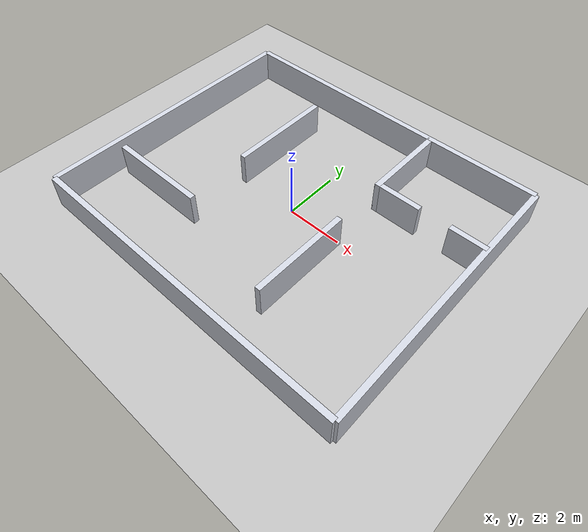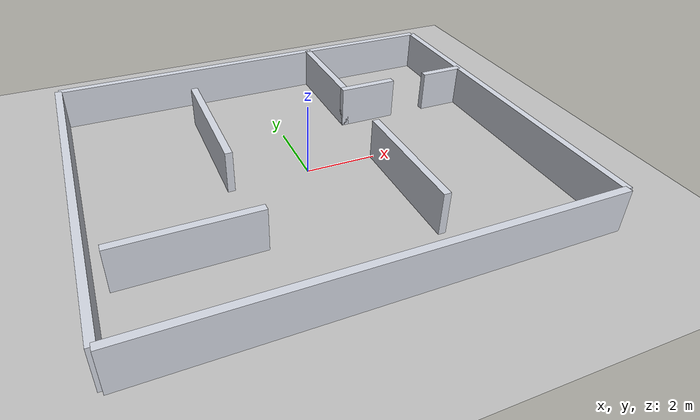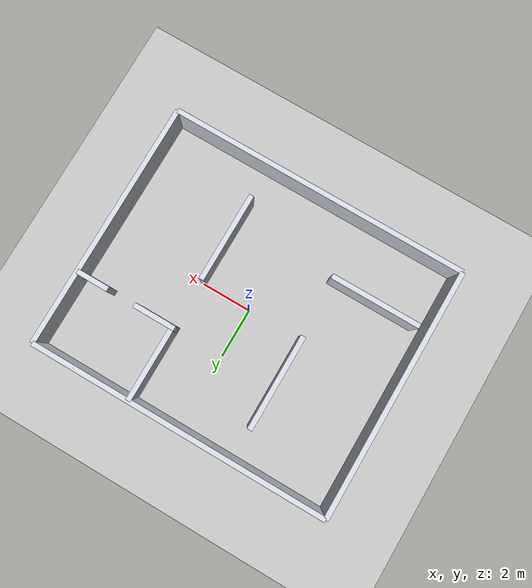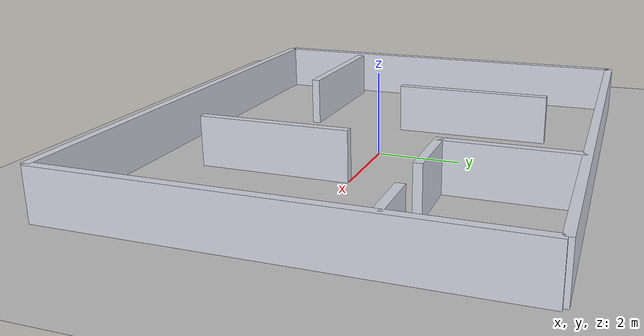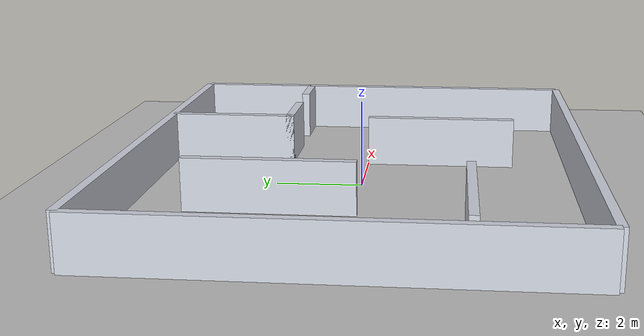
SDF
<?xml version="1.0"?>
<sdf version="1.10">
  <world name="blocked_road_world">
    <physics name="default_physics" type="ode">
      <max_step_size>0.004</max_step_size>
      <real_time_factor>1.0</real_time_factor>
      <real_time_update_rate>250</real_time_update_rate>
    </physics>

    <plugin
      filename="gz-sim-physics-system"
      name="gz::sim::systems::Physics"/>
    <plugin
      filename="gz-sim-user-commands-system"
      name="gz::sim::systems::UserCommands"/>
    <plugin
      filename="gz-sim-scene-broadcaster-system"
      name="gz::sim::systems::SceneBroadcaster"/>
    <plugin
      filename="gz-sim-imu-system"
      name="gz::sim::systems::Imu"/>
    <plugin
      filename="gz-sim-sensors-system"
      name="gz::sim::systems::Sensors">
      <render_engine>ogre2</render_engine>
    </plugin>

    <gravity>0 0 -9.81</gravity>

    <scene>
      <ambient>0.45 0.45 0.45 1</ambient>
      <background>0.75 0.80 0.85 1</background>
      <shadows>false</shadows>
      <grid>true</grid>
    </scene>

    <light name="sun" type="directional">
      <cast_shadows>false</cast_shadows>
      <pose>0 0 10 0 0 0</pose>
      <diffuse>0.9 0.9 0.9 1</diffuse>
      <specular>0.2 0.2 0.2 1</specular>
      <attenuation>
        <range>1000</range>
        <constant>0.9</constant>
        <linear>0.01</linear>
        <quadratic>0.001</quadratic>
      </attenuation>
      <direction>-0.4 0.2 -1.0</direction>
    </light>

    <model name="ground_plane">
      <static>true</static>
      <link name="ground_link">
        <collision name="ground_collision">
          <geometry>
            <plane>
              <normal>0 0 1</normal>
              <size>100 100</size>
            </plane>
          </geometry>
          <surface>
            <friction>
              <ode>
                <mu>1.0</mu>
                <mu2>1.0</mu2>
              </ode>
            </friction>
          </surface>
        </collision>
        <visual name="ground_visual">
          <geometry>
            <plane>
              <normal>0 0 1</normal>
              <size>100 100</size>
            </plane>
          </geometry>
          <material>
            <ambient>0.65 0.65 0.65 1</ambient>
            <diffuse>0.75 0.75 0.75 1</diffuse>
            <specular>0.05 0.05 0.05 1</specular>
          </material>
        </visual>
      </link>
    </model>

    <model name="blocked_road_environment">
      <static>true</static>
      <link name="walls">
        <collision name="north_wall_collision">
          <pose>0.0 5.0 0.6 0 0 0</pose>
          <geometry><box><size>12.0 0.2 1.2</size></box></geometry>
        </collision>
        <visual name="north_wall_visual">
          <pose>0.0 5.0 0.6 0 0 0</pose>
          <geometry><box><size>12.0 0.2 1.2</size></box></geometry>
          <material>
            <ambient>0.82 0.84 0.88 1</ambient>
            <diffuse>0.82 0.84 0.88 1</diffuse>
          </material>
        </visual>

        <collision name="south_wall_collision">
          <pose>0.0 -5.0 0.6 0 0 0</pose>
          <geometry><box><size>12.0 0.2 1.2</size></box></geometry>
        </collision>
        <visual name="south_wall_visual">
          <pose>0.0 -5.0 0.6 0 0 0</pose>
          <geometry><box><size>12.0 0.2 1.2</size></box></geometry>
          <material>
            <ambient>0.82 0.84 0.88 1</ambient>
            <diffuse>0.82 0.84 0.88 1</diffuse>
          </material>
        </visual>

        <collision name="east_wall_collision">
          <pose>6.0 0.0 0.6 0 0 0</pose>
          <geometry><box><size>0.2 10.0 1.2</size></box></geometry>
        </collision>
        <visual name="east_wall_visual">
          <pose>6.0 0.0 0.6 0 0 0</pose>
          <geometry><box><size>0.2 10.0 1.2</size></box></geometry>
          <material>
            <ambient>0.82 0.84 0.88 1</ambient>
            <diffuse>0.82 0.84 0.88 1</diffuse>
          </material>
        </visual>

        <collision name="west_wall_collision">
          <pose>-6.0 0.0 0.6 0 0 0</pose>
          <geometry><box><size>0.2 10.0 1.2</size></box></geometry>
        </collision>
        <visual name="west_wall_visual">
          <pose>-6.0 0.0 0.6 0 0 0</pose>
          <geometry><box><size>0.2 10.0 1.2</size></box></geometry>
          <material>
            <ambient>0.82 0.84 0.88 1</ambient>
            <diffuse>0.82 0.84 0.88 1</diffuse>
          </material>
        </visual>

        <collision name="alcove_west_collision">
          <pose>2.0 3.45 0.6 0 0 0</pose>
          <geometry><box><size>0.2 3.1 1.2</size></box></geometry>
        </collision>
        <visual name="alcove_west_visual">
          <pose>2.0 3.45 0.6 0 0 0</pose>
          <geometry><box><size>0.2 3.1 1.2</size></box></geometry>
          <material>
            <ambient>0.82 0.84 0.88 1</ambient>
            <diffuse>0.82 0.84 0.88 1</diffuse>
          </material>
        </visual>

        <collision name="alcove_mouth_west_collision">
          <pose>2.75 2.0 0.6 0 0 0</pose>
          <geometry><box><size>1.7 0.2 1.2</size></box></geometry>
        </collision>
        <visual name="alcove_mouth_west_visual">
          <pose>2.75 2.0 0.6 0 0 0</pose>
          <geometry><box><size>1.7 0.2 1.2</size></box></geometry>
          <material>
            <ambient>0.82 0.84 0.88 1</ambient>
            <diffuse>0.82 0.84 0.88 1</diffuse>
          </material>
        </visual>

        <collision name="alcove_mouth_east_collision">
          <pose>5.35 2.0 0.6 0 0 0</pose>
          <geometry><box><size>1.3 0.2 1.2</size></box></geometry>
        </collision>
        <visual name="alcove_mouth_east_visual">
          <pose>5.35 2.0 0.6 0 0 0</pose>
          <geometry><box><size>1.3 0.2 1.2</size></box></geometry>
          <material>
            <ambient>0.82 0.84 0.88 1</ambient>
            <diffuse>0.82 0.84 0.88 1</diffuse>
          </material>
        </visual>

        <collision name="partition_a_collision">
          <pose>-2.2 1.8 0.6 0 0 0</pose>
          <geometry><box><size>0.2 3.8 1.2</size></box></geometry>
        </collision>
        <visual name="partition_a_visual">
          <pose>-2.2 1.8 0.6 0 0 0</pose>
          <geometry><box><size>0.2 3.8 1.2</size></box></geometry>
          <material>
            <ambient>0.82 0.84 0.88 1</ambient>
            <diffuse>0.82 0.84 0.88 1</diffuse>
          </material>
        </visual>

        <collision name="partition_b_collision">
          <pose>2.0 -1.8 0.6 0 0 0</pose>
          <geometry><box><size>0.2 3.6 1.2</size></box></geometry>
        </collision>
        <visual name="partition_b_visual">
          <pose>2.0 -1.8 0.6 0 0 0</pose>
          <geometry><box><size>0.2 3.6 1.2</size></box></geometry>
          <material>
            <ambient>0.82 0.84 0.88 1</ambient>
            <diffuse>0.82 0.84 0.88 1</diffuse>
          </material>
        </visual>

        <collision name="partition_d_collision">
          <pose>-3.8 -2.5 0.6 0 0 0</pose>
          <geometry><box><size>3.6 0.2 1.2</size></box></geometry>
        </collision>
        <visual name="partition_d_visual">
          <pose>-3.8 -2.5 0.6 0 0 0</pose>
          <geometry><box><size>3.6 0.2 1.2</size></box></geometry>
          <material>
            <ambient>0.82 0.84 0.88 1</ambient>
            <diffuse>0.82 0.84 0.88 1</diffuse>
          </material>
        </visual>

      </link>
    </model>
  </world>
</sdf>
